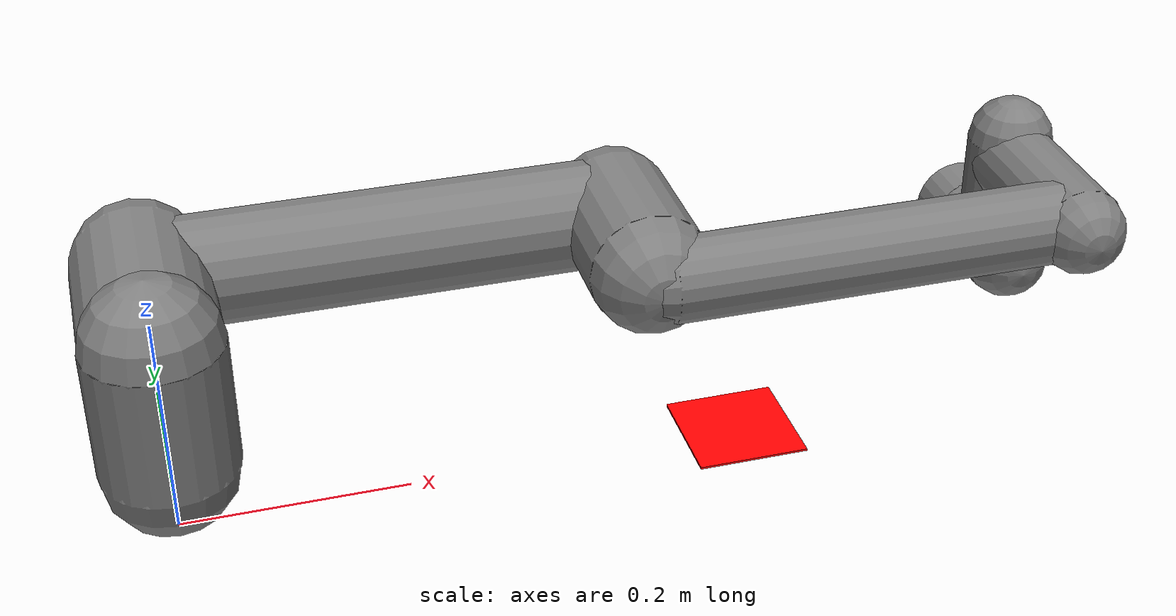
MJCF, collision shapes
<mujoco model="ur5e">
  <compiler angle="radian" meshdir="assets" autolimits="true"/>

  <option integrator="implicitfast"/>

  <default>
    <default class="ur5e">
      <material specular="0.5" shininess="0.25"/>
      <joint axis="0 1 0" range="-6.28319 6.28319" armature="0.1"/>
      <general gaintype="fixed" biastype="affine" ctrlrange="-6.2831 6.2831" gainprm="90000" biasprm="0 -9000 -400"
        forcerange="-250 250"/>
      <default class="size3">
        <default class="size3_limited">
          <joint range="-3.1415 3.1415"/>
          <general ctrlrange="-3.1415 3.1415"/>
        </default>
      </default>
      <default class="size1">
        <general gainprm="50000" biasprm="0 -500 0" forcerange="-28 28"/>
      </default>
      <default class="visual">
        <geom type="mesh" contype="0" conaffinity="0" group="2"/>
      </default>
      <default class="collision">
        <geom type="capsule" group="3"/>
        <default class="eef_collision">
          <geom type="cylinder"/>
        </default>
      </default>
      <site size="0.001" rgba="0.5 0.5 0.5 0.3" group="2"/>
    </default>
  </default>

  <asset>
    <material class="ur5e" name="black" rgba="0.033 0.033 0.033 1"/>
    <material class="ur5e" name="jointgray" rgba="0.278 0.278 0.278 1"/>
    <material class="ur5e" name="linkgray" rgba="0.82 0.82 0.82 1"/>
    <material class="ur5e" name="urblue" rgba="0.49 0.678 0.8 1"/>

    <mesh file="base_0.obj"/>
    <mesh file="base_1.obj"/>
    <mesh file="shoulder_0.obj"/>
    <mesh file="shoulder_1.obj"/>
    <mesh file="shoulder_2.obj"/>
    <mesh file="upperarm_0.obj"/>
    <mesh file="upperarm_1.obj"/>
    <mesh file="upperarm_2.obj"/>
    <mesh file="upperarm_3.obj"/>
    <mesh file="forearm_0.obj"/>
    <mesh file="forearm_1.obj"/>
    <mesh file="forearm_2.obj"/>
    <mesh file="forearm_3.obj"/>
    <mesh file="wrist1_0.obj"/>
    <mesh file="wrist1_1.obj"/>
    <mesh file="wrist1_2.obj"/>
    <mesh file="wrist2_0.obj"/>
    <mesh file="wrist2_1.obj"/>
    <mesh file="wrist2_2.obj"/>
    <mesh file="wrist3.obj"/>
  </asset>

  <worldbody>
    <light name="spotlight" mode="targetbodycom" target="wrist_2_link" pos="0 -1 2"/>
    <site name="target" pos="0.5 0.0 0.0" type="box" size="0.05 0.05 0.001" rgba="1 0 0 1">
    </site>
    <body name="base" quat="1 0 0 0" childclass="ur5e">
      <inertial mass="4.0" pos="0 0 0" diaginertia="0.00443333156 0.00443333156 0.0072"/>
      <geom mesh="base_0" material="black" class="visual"/>
      <geom mesh="base_1" material="jointgray" class="visual"/>
      <body name="shoulder_link" pos="0 0 0.163">
        <inertial mass="3.7" pos="0 0 0" diaginertia="0.0102675 0.0102675 0.00666"/>
        <joint name="shoulder_pan_joint" class="size3" axis="0 0 1"/>
        <geom mesh="shoulder_0" material="urblue" class="visual"/>
        <geom mesh="shoulder_1" material="black" class="visual"/>
        <geom mesh="shoulder_2" material="jointgray" class="visual"/>
        <geom class="collision" size="0.06 0.06" pos="0 0 -0.04"/>
        <body name="upper_arm_link" pos="0 0.138 0" quat="1 0 1 0">
          <inertial mass="8.393" pos="0 0 0.2125" diaginertia="0.133886 0.133886 0.0151074"/>
          <joint name="shoulder_lift_joint" class="size3"/>
          <geom mesh="upperarm_0" material="linkgray" class="visual"/>
          <geom mesh="upperarm_1" material="black" class="visual"/>
          <geom mesh="upperarm_2" material="jointgray" class="visual"/>
          <geom mesh="upperarm_3" material="urblue" class="visual"/>
          <geom class="collision" pos="0 -0.04 0" quat="1 1 0 0" size="0.06 0.06"/>
          <geom class="collision" size="0.05 0.2" pos="0 0 0.2"/>
          <body name="forearm_link" pos="0 -0.131 0.425">
            <inertial mass="2.275" pos="0 0 0.196" diaginertia="0.0311796 0.0311796 0.004095"/>
            <joint name="elbow_joint" class="size3_limited"/>
            <geom mesh="forearm_0" material="urblue" class="visual"/>
            <geom mesh="forearm_1" material="linkgray" class="visual"/>
            <geom mesh="forearm_2" material="black" class="visual"/>
            <geom mesh="forearm_3" material="jointgray" class="visual"/>
            <geom class="collision" pos="0 0.08 0" quat="1 1 0 0" size="0.055 0.06"/>
            <geom class="collision" size="0.038 0.19" pos="0 0 0.2"/>
            <body name="wrist_1_link" pos="0 0 0.392" quat="1 0 1 0">
              <inertial mass="1.219" pos="0 0.127 0" diaginertia="0.0025599 0.0025599 0.0021942"/>
              <joint name="wrist_1_joint" class="size1"/>
              <geom mesh="wrist1_0" material="black" class="visual"/>
              <geom mesh="wrist1_1" material="urblue" class="visual"/>
              <geom mesh="wrist1_2" material="jointgray" class="visual"/>
              <geom class="collision" pos="0 0.05 0" quat="1 1 0 0" size="0.04 0.07"/>
              <body name="wrist_2_link" pos="0 0.127 0">
                <inertial mass="1.219" pos="0 0 0.1" diaginertia="0.0025599 0.0025599 0.0021942"/>
                <joint name="wrist_2_joint" axis="0 0 1" class="size1"/>
                <geom mesh="wrist2_0" material="black" class="visual"/>
                <geom mesh="wrist2_1" material="urblue" class="visual"/>
                <geom mesh="wrist2_2" material="jointgray" class="visual"/>
                <geom class="collision" size="0.04 0.06" pos="0 0 0.04"/>
                <geom class="collision" pos="0 0.02 0.1" quat="1 1 0 0" size="0.04 0.04"/>
                <body name="wrist_3_link" pos="0 0 0.1">
                  <inertial mass="0.1889" pos="0 0.0771683 0" quat="1 0 0 1" diaginertia="0.000132134 9.90863e-05 9.90863e-05"/>
                  <joint name="wrist_3_joint" class="size1"/>
                  <geom material="linkgray" mesh="wrist3" class="visual"/>
                  <geom class="eef_collision" pos="0 0.08 0" quat="1 1 0 0" size="0.04 0.02"/>
                  <site name="attachment_site" pos="0 0.1 0" quat="0 0 0.707106781186548 0.707106781186548"/>
                  <!-- 绕Y轴旋转180度，相机看向相反方向  principalpixel是相对于主点的偏移，不是相对于像素坐标的原点，focalpixel相机标定数据，像素焦距fx和fy -->
                  <camera name="end_effector_camera" pos="0.0 0.1 0" zaxis="0 -1 0" resolution="1280 960" focalpixel="500 500" principalpixel="0 0" sensorsize="6.4 4.8"/>
                </body>
              </body>
            </body>
          </body>
        </body>
      </body>
    </body>
  </worldbody>

  <actuator>
    <!-- 大关节需要更大的 KP 来克服重力 -->
    <position name="shoulder_pan" joint="shoulder_pan_joint" kp="20000" dampratio="1" ctrlrange="-6.28319 6.28319" forcerange="-300 300"/>
    <position name="shoulder_lift" joint="shoulder_lift_joint" kp="20000" dampratio="1" ctrlrange="-6.28319 6.28319" forcerange="-300 300"/>
    <position name="elbow" joint="elbow_joint" kp="15000" dampratio="1" ctrlrange="-3.1415 3.1415" forcerange="-300 300"/>

    <!-- 手腕关节负载较小，增益可稍小 -->
    <position name="wrist_1" joint="wrist_1_joint" kp="10000" dampratio="1" ctrlrange="-6.28319 6.28319" forcerange="-150 150"/>
    <position name="wrist_2" joint="wrist_2_joint" kp="10000" dampratio="1" ctrlrange="-6.28319 6.28319" forcerange="-150 150"/>
    <position name="wrist_3" joint="wrist_3_joint" kp="10000" dampratio="1" ctrlrange="-6.28319 6.28319" forcerange="-150 150"/>
  </actuator>
  <sensor>
    <jointpos name="shoulder_pan_pos" joint="shoulder_pan_joint"/>
    <jointpos name="shoulder_lift_pos" joint="shoulder_lift_joint"/>
    <jointpos name="elbow_pos" joint="elbow_joint"/>
    <jointvel name="shoulder_pan_vel" joint="shoulder_pan_joint"/>
    <jointvel name="shoulder_lift_vel" joint="shoulder_lift_joint"/>
    <jointvel name="elbow_vel" joint="elbow_joint"/>
  </sensor>
</mujoco>
